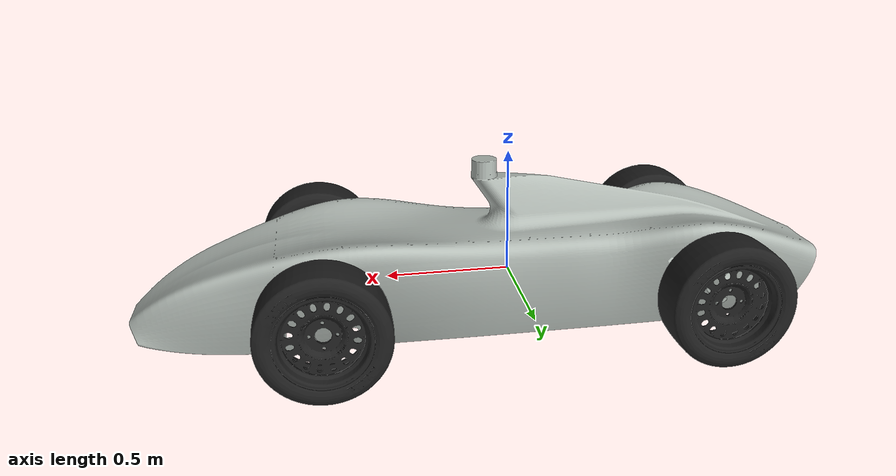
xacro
<?xml version="1.0"?>
<robot name="eufs" xmlns:xacro="http://www.ros.org/wiki/xacro">

    <!-- Imported elements -->

    <!--  Import the wheels  -->
    <xacro:include filename="$(find eufs_description)/urdf/wheels.urdf.xacro"/>

    <!-- Import EUFS base element with the chassis -->
    <xacro:include filename="$(find eufs_description)/urdf/eufs_base.urdf.xacro">
        <xacro:arg name="publish_tf" value="$(arg publish_tf)"/>
        <xacro:arg name="simulate_perception" value="$(arg simulate_perception)"/>
    </xacro:include>

    <!-- Import all available sensors -->
    <xacro:include filename="$(find eufs_description)/sensors/all_sensors.urdf.xacro" />

    <!--  Include the plugins  -->
    <xacro:arg name="publish_tf" default="false"/>
    <xacro:arg name="simulate_perception" default="true"/>
    <xacro:include filename="$(find eufs_description)/urdf/eufs_plugins.gazebo.xacro">
        <xacro:arg name="publish_tf" value="$(arg publish_tf)"/>
        <xacro:arg name="simulate_perception" value="$(arg simulate_perception)"/>
    </xacro:include>

    <!-- Config parameters -->

    <!--  Load the config file  -->
    <xacro:property name="config" value="${load_yaml('$(arg config_file)')}"/>

    <!-- Global parameters -->

    <xacro:property name="PI" value="3.1415926535897931"/>

    <!-- Robots Elements -->

    <!-- Chassis of the car -->
    <xacro:eufs_base chassis_mesh="package://eufs_description/meshes/ads-dv.dae"/>

    <!-- Wheels -->
    <xacro:wheels chassis_width="0.98" wheelbase="1.530"></xacro:wheels>

    <!--                 MAIN SENSORS                    -->

    <!--     LOCATIONS: (XYZ)
    IMU: 0.0 0.0 0.170
    GPS: -0.110 0.0 0.9
    LIDAR: 1.700 0.0 -0.150
    STEREO CAM: -0.110 0.0 0.800 -->

    <!--  TODO: Check the locations of these are correct  -->
    <xacro:sensor_imu parent="base_footprint" prefix="imu">
        <origin xyz="0.0 0.0 0.0" rpy="0 0 0"/>
    </xacro:sensor_imu>

    <xacro:sensor_gps parent="base_footprint" prefix="gps">
        <origin xyz="0.0 0.0 0.4" rpy="0 0 0"/>
    </xacro:sensor_gps>

    <!-- Simulate raw perception sensors only if we're not using the abstracted perception simulation -->
    <xacro:unless value="$(arg simulate_perception)">
        <xacro:VLP-16R parent="base_footprint" name="velodyne" topic="/velodyne_points" hz="10" samples="800">
            <origin xyz="1.58 0.0 -0.1" rpy="0 ${1*M_PI/180.0} 0"/>
        </xacro:VLP-16R>

        <xacro:zed_camera parent="base_footprint" prefix="zed">
            <origin xyz="0.1 0.0 0.52" rpy="0 0 0"/>
        </xacro:zed_camera>
    </xacro:unless>

</robot>

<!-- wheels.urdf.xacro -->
<robot name="wheels" xmlns:xacro="http://www.ros.org/wiki/xacro">
  <xacro:macro name="wheels"
               params="chassis_width wheelbase">

    <!-- Parameters -->

    <xacro:property name="degrees_90" value="1.5708"/>

    <xacro:property name="wheel_mass" value="10.0"/>

    <xacro:property name="wheel_diameter" value="0.505"/>
    <xacro:property name="wheel_width" value="0.2"/>

    <!-- TODO: Check if a different value for these would result in the wheels turning better -->
    <xacro:property name="wheel_friction_mu1" value="2"/>
    <xacro:property name="wheel_friction_mu2" value="2"/>
    <xacro:property name="wheel_friction_kp" value="1e8"/>

    <xacro:property name="steering_hinge_mass" value="1"/>

    <!-- Wheel description -->

    <xacro:macro name="wheel"
                 params="lr_prefix fr_prefix">
      <link name="${lr_prefix}_${fr_prefix}_wheel">
        <inertial>
          <origin xyz="0 0 0" rpy="0 0 0" />
          <mass value="${wheel_mass}"/>
          <inertia
              ixx="0.3"
              ixy="0"
              ixz="0"
              iyy="0.2"
              iyz="0"
              izz="0.2"   />
        </inertial>

        <visual>
          <origin xyz="0 0 0" rpy="${degrees_90} 0 0"/>
          <geometry>
            <mesh filename="package://eufs_description/meshes/wheel_${lr_prefix}.dae"/>
          </geometry>
          <material name="tire_mat"/>
        </visual>

        <collision>
          <origin xyz="0 0 0" rpy="${degrees_90} 0 0"/>
          <geometry>
            <cylinder radius="${wheel_diameter / 2}" length="${wheel_width}"/>
          </geometry>
        </collision>
      </link>

      <gazebo reference="${lr_prefix}_${fr_prefix}_wheel">
        <material>Gazebo/Black</material>
        <mu1>${wheel_friction_mu1}</mu1>
        <mu2>${wheel_friction_mu2}</mu2>
        <kp>${wheel_friction_kp}</kp>
      </gazebo>
    </xacro:macro>

    <!-- Front and rear wheel descriptions -->

    <!-- Description of how a front wheel is connected to the base_footprint -->
    <xacro:macro name="front_wheel"
                 params="lr_prefix lr_reflect">

      <joint name="${lr_prefix}_steering_hinge_joint" type="revolute">
        <origin xyz="${wheelbase / 2}
                     ${lr_reflect * (chassis_width / 2)}
                     0"
                rpy="0 0 0"/>
        <parent link="base_footprint"/>
        <child link="${lr_prefix}_steering_hinge"/>
        <axis xyz="0 0 1"/>
        <limit lower="${config['tire']['max_steering'] * -1}" upper="${config['tire']['max_steering']}" effort="10000000" velocity="1000000"/>
      </joint>

      <link name="${lr_prefix}_steering_hinge">
        <inertial>
          <origin xyz="0 0 0" rpy="0 0 0" />
          <mass value="${steering_hinge_mass}"/>
          <inertia
              ixx="0.04"
              ixy="0.0"
              ixz="0.0"
              iyy="0.04"
              iyz="0.0"
              izz="0.04"   />
        </inertial>
      </link>

      <joint name="front_${lr_prefix}_wheel_joint" type="continuous">
        <origin xyz="0 0 0"
                rpy="0 0 0"/>
        <parent link="${lr_prefix}_steering_hinge"/>
        <child link="${lr_prefix}_front_wheel"/>
        <axis xyz="0 1 0"/>
        <limit lower="0" upper="0" effort="10000000" velocity="1000000"/>
      </joint>

      <xacro:wheel lr_prefix="${lr_prefix}" fr_prefix="front"/>
    </xacro:macro>

    <!-- Description of how a rear wheel is connected to the base_footprint -->
    <xacro:macro name="rear_wheel"
                 params="lr_prefix lr_reflect">

      <joint name="rear_${lr_prefix}_wheel_joint" type="continuous">
        <origin xyz="${-1 * wheelbase / 2}
                     ${lr_reflect * (chassis_width / 2)}
                     0"
                rpy="0 0 0"/>
        <parent link="base_footprint"/>
        <child link="${lr_prefix}_rear_wheel"/>
        <axis xyz="0 1 0"/>
        <limit lower="0" upper="0" effort="10000000" velocity="1000000"/>
      </joint>

      <xacro:wheel lr_prefix="${lr_prefix}" fr_prefix="rear"/>
    </xacro:macro>

    <!-- Add the wheels -->

    <xacro:front_wheel lr_prefix="left" lr_reflect="1"/>
    <xacro:front_wheel lr_prefix="right" lr_reflect="-1"/>

    <xacro:rear_wheel lr_prefix="left" lr_reflect="1" />
    <xacro:rear_wheel lr_prefix="right" lr_reflect="-1" />
  </xacro:macro>

</robot>

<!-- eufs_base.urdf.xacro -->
<robot name="eufs" xmlns:xacro="http://www.ros.org/wiki/xacro">
  <xacro:macro name="eufs_base" params="chassis_mesh">

    <!-- BASE FOOTPRINT -->
    <link name="base_footprint"/>

    <joint name="chassis_joint" type="fixed">
      <parent link="base_footprint"/>
      <child link="chassis"/>
      <origin xyz="0 0 0"
              rpy="0 0 0"/>
      <axis xyz="1 0 0"/>
    </joint>

    <link name="chassis">
      <visual>
        <origin xyz="0 0 0" rpy="0 0 0" />
        <geometry>
          <mesh filename="${chassis_mesh}"/>
        </geometry>
      </visual>
      <inertial>
        <origin xyz="0 0 0" rpy="0 0 0" />
        <mass value="140" />
        <inertia
            ixx="16.3"
            ixy="0"
            ixz="0"
            iyy="33.6"
            iyz="0"
            izz="47.9" />
      </inertial>
      <collision>
        <origin xyz="0 0 0" rpy="0 0 0" />
        <geometry>
          <mesh filename="${chassis_mesh}"/>
        </geometry>
      </collision>
    </link>

  </xacro:macro>
</robot>

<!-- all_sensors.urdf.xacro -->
<robot name="all_sensors" xmlns:xacro="http://www.ros.org/wiki/xacro">
  <!-- This file unifies all sensors that can be used on simulation, defined as xacro:macros -->

  <!-- GPS -->
  <xacro:include filename="$(find eufs_description)/sensors/gps.urdf.xacro"/>

  <!-- Hokuyo utm30lx -->
  <xacro:include filename="$(find eufs_description)/sensors/hokuyo_utm30lx.urdf.xacro"/>

  <!-- Velodyne VLP-16 -->
  <xacro:include filename="$(find eufs_description)/sensors/VLP-16.urdf.xacro"/>
  <xacro:include filename="$(find eufs_description)/sensors/VLP-16R.urdf.xacro"/>

  <!-- Imu -->
  <xacro:include filename="$(find eufs_description)/sensors/imu.urdf.xacro"/>

  <!-- Kinect -->
  <xacro:include filename="$(find eufs_description)/sensors/kinect.urdf.xacro"/>

  <!-- KinectV2 -->
  <xacro:include filename="$(find eufs_description)/sensors/kinectv2.urdf.xacro"/>

  <!-- Pointgrey Bumblebee -->
  <xacro:include filename="$(find eufs_description)/sensors/pointgrey_bumblebee2.urdf.xacro"/>

  <!-- ZED Stereo camera -->
  <xacro:include filename="$(find eufs_description)/sensors/zed.urdf.xacro"/>

</robot>

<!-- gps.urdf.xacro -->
<robot name="sensor_gps" xmlns:xacro="http://www.ros.org/wiki/xacro">
    <xacro:macro name="sensor_gps" params="prefix parent *origin">
        <!-- ANTENNA GPS -->
        <joint name="${prefix}_joint" type="fixed">
            <axis xyz="0 1 0"/>
            <xacro:insert_block name="origin"/>
            <parent link="${parent}"/>
            <child link="${prefix}_base_link"/>
        </joint>
        <link name="${prefix}_base_link">
            <inertial>
                <mass value="0.001"/>
                <origin rpy="0 0 0" xyz="0 0 0"/>
                <inertia ixx="0.0001" ixy="0" ixz="0" iyy="0.000001" iyz="0" izz="0.0001"/>
            </inertial>
            <visual>
                <origin rpy="0 0 0" xyz="0 0 0"/>
                <geometry>
                    <box size="0.001 0.001 0.001"/>
                </geometry>
            </visual>
            <collision>
                <origin rpy="0 0 0" xyz="0 0 0"/>
                <geometry>
                    <box size=".001 .001 .001"/>
                </geometry>
            </collision>
        </link>
        <gazebo reference="${prefix}_base_link">
            <material>Gazebo/White</material>
            <gravity>true</gravity>
        </gazebo>
        <gazebo reference="${prefix}_base_link">
            <sensor name="gps" type="gps">
                <always_on>true</always_on>
                <update_rate>5</update_rate>
                <gps>
                    <position_sensing>
                        <horizontal>
                            <noise type="gaussian">
                                <mean>0.0</mean>
                                <stddev>2</stddev>
                            </noise>
                        </horizontal>
                        <vertical>
                            <noise type="gaussian">
                                <mean>0.0</mean>
                                <stddev>2.5</stddev>
                            </noise>
                        </vertical>
                    </position_sensing>
                    <velocity_sensing>
                        <horizontal>
                            <noise type="gaussian">
                                <mean>0.0</mean>
                                <stddev>0.1</stddev>
                            </noise>
                        </horizontal>
                        <vertical>
                            <noise type="gaussian">
                                <mean>0.0</mean>
                                <stddev>0.1</stddev>
                            </noise>
                        </vertical>
                    </velocity_sensing>
                </gps>
                <plugin name="${prefix}_controller" filename="libgazebo_ros_gps_sensor.so">
                    <ros>
                        <remapping>~/out:=${prefix}</remapping>
                    </ros>

                    <frame_name>${prefix}_base_link</frame_name>
                </plugin>
            </sensor>
        </gazebo>
    </xacro:macro>
</robot>

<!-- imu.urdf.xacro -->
<robot name="sensor_imu" xmlns:xacro="http://www.ros.org/wiki/xacro">
    <xacro:macro name="sensor_imu" params="prefix parent *origin noise:=0.08">
        <joint name="${prefix}_base_joint" type="fixed">
            <axis xyz="1 0 0"/>
            <xacro:insert_block name="origin"/>
            <parent link="${parent}"/>
            <child link="${prefix}_base_link"/>
        </joint>
        <link name="${prefix}_base_link">
            <inertial>
                <mass value="0.001"/>
                <origin rpy="0 0 0" xyz="0 0 0"/>
                <inertia ixx="0.0001" ixy="0" ixz="0" iyy="0.000001" iyz="0" izz="0.0001"/>
            </inertial>
            <visual>
                <origin rpy="0 0 0" xyz="0 0 0"/>
                <geometry>
                    <box size="0.001 0.001 0.001"/>
                </geometry>
            </visual>
            <collision>
                <origin rpy="0 0 0" xyz="0 0 0"/>
                <geometry>
                    <box size=".001 .001 .001"/>
                </geometry>
            </collision>
        </link>
        <gazebo reference="${prefix}_base_link">
            <gravity>true</gravity>
            <sensor name="imu_sensor" type="imu">
                <always_on>true</always_on>
                <update_rate>1000</update_rate>
                <visualize>true</visualize>
                <topic>__default_topic__</topic>
                <imu>
                    <angular_velocity>
                        <x>
                            <noise type="gaussian">
                                <mean>0.0</mean>
                                <stddev>${noise}</stddev>
                            </noise>
                        </x>

                        <y>
                            <noise type="gaussian">
                                <mean>0.0</mean>
                                <stddev>${noise}</stddev>
                            </noise>
                        </y>

                        <z>
                            <noise type="gaussian">
                                <mean>0.0</mean>
                                <stddev>${noise}</stddev>
                            </noise>
                        </z>
                    </angular_velocity>

                    <linear_acceleration>
                        <x>
                            <noise type="gaussian">
                                <mean>0.0</mean>
                                <stddev>${noise}</stddev>
                            </noise>
                        </x>

                        <y>
                            <noise type="gaussian">
                                <mean>0.0</mean>
                                <stddev>${noise}</stddev>
                            </noise>
                        </y>

                        <z>
                            <noise type="gaussian">
                                <mean>0.0</mean>
                                <stddev>${noise}</stddev>
                            </noise>
                        </z>
                    </linear_acceleration>
                </imu>
                <plugin filename="libgazebo_ros_imu_sensor.so" name="${prefix}">
                    <ros>
                        <remapping>~/out:=${prefix}</remapping>
                    </ros>
                    <frame_name>${prefix}_base_link</frame_name>
                    <initial_orientation_as_reference>false</initial_orientation_as_reference>
                </plugin>
                <pose>0 0 0 0 0 0</pose>
            </sensor>
        </gazebo>
    </xacro:macro>
</robot>
